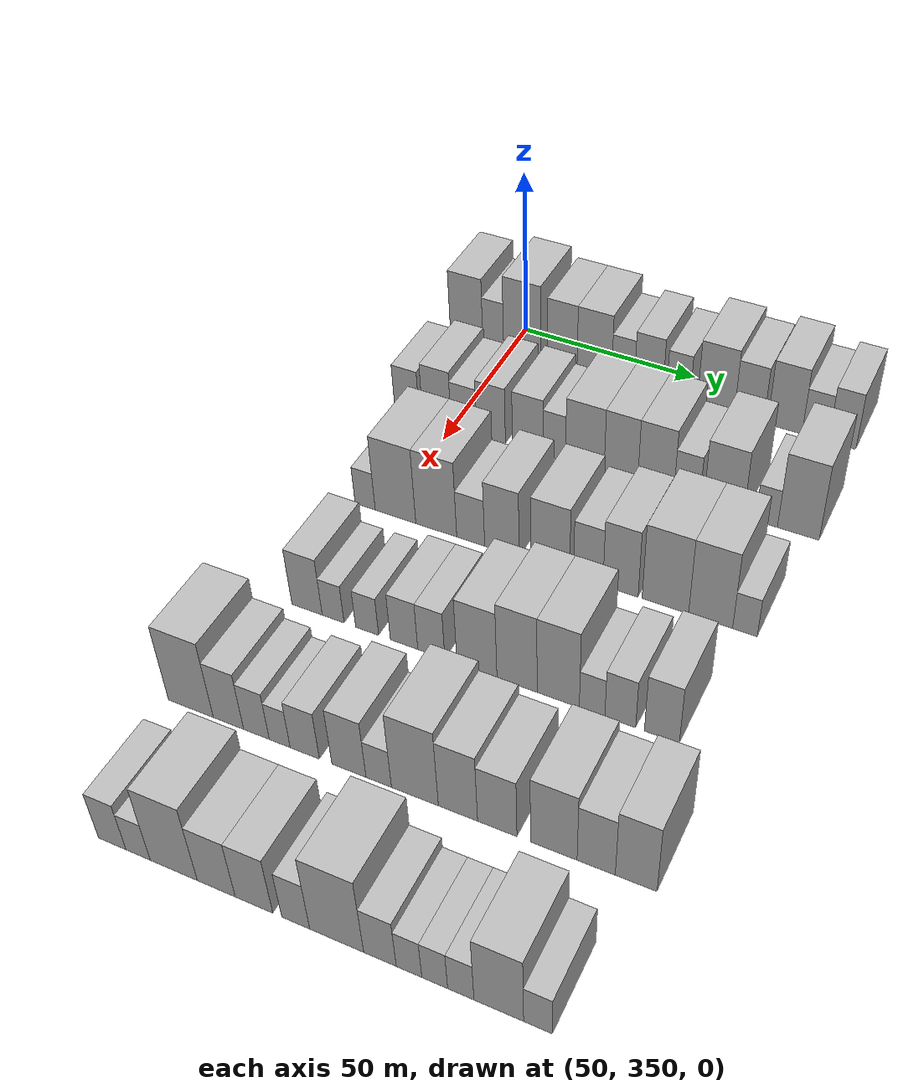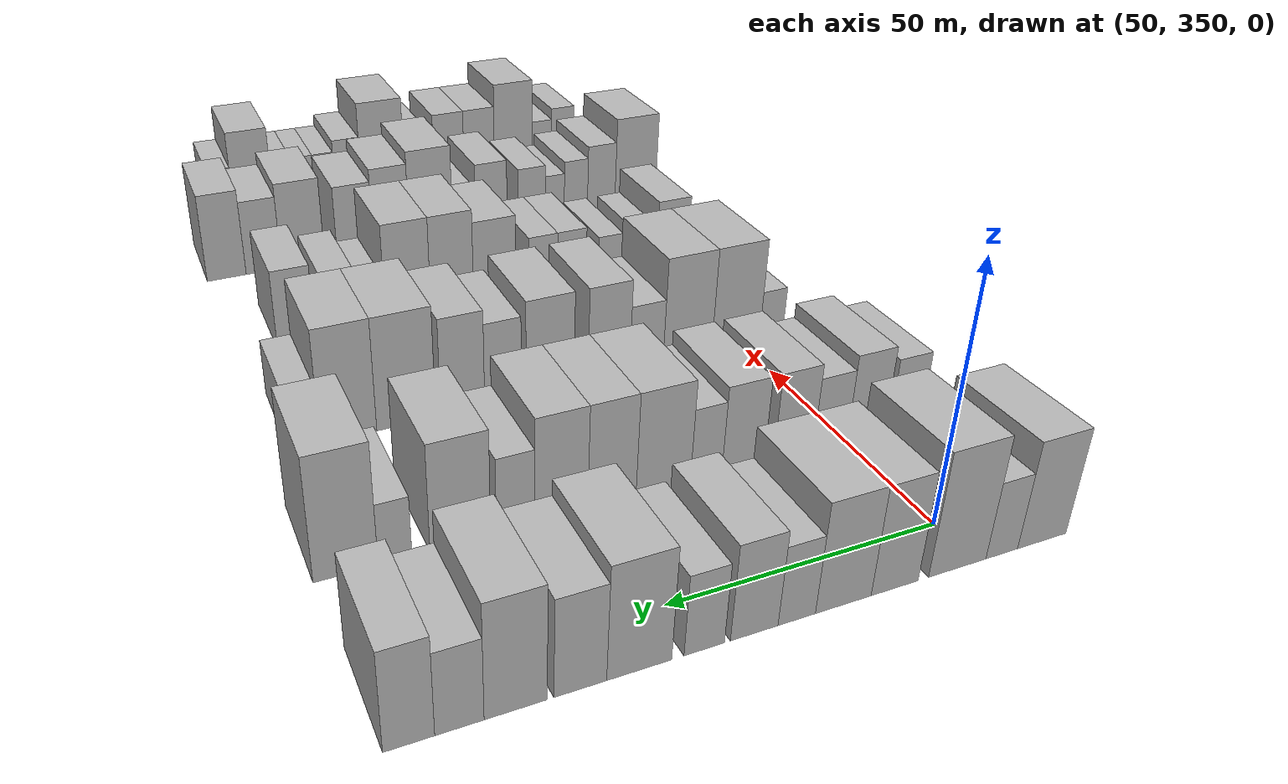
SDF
<sdf version="1.6">
 <world name="default">
  <model name="building_103">
   <static>1</static>
   <pose>50.0000 336.5577 0 0.000000 0.000000 0.000000</pose>
   <link name="link">
    <pose>0 0 10.50 0 0 0</pose>
    <collision name="collision"><geometry><box><size>20.0000 9.9642 21.0000</size></box></geometry></collision>
    <visual name="visual">
     <cast_shadows>0</cast_shadows>
     <geometry><box><size>20.0000 9.9642 21.0000</size></box></geometry>
     <material>
      <script>
       <uri>model://HANNAS_wall/materials/scripts</uri>
       <uri>model://HANNAS_wall/materials/textures</uri>
       <name>vrc/HANNAS_wall</name>
      </script>
     </material>
    </visual>
   </link>
  </model>
  <model name="building_104">
   <static>1</static>
   <pose>50.0000 344.7074 0 0.000000 0.000000 0.000000</pose>
   <link name="link">
    <pose>0 0 7.50 0 0 0</pose>
    <collision name="collision"><geometry><box><size>20.0000 6.3351 15.0000</size></box></geometry></collision>
    <visual name="visual">
     <cast_shadows>0</cast_shadows>
     <geometry><box><size>20.0000 6.3351 15.0000</size></box></geometry>
     <material>
      <script>
       <uri>model://HANNAS_wall/materials/scripts</uri>
       <uri>model://HANNAS_wall/materials/textures</uri>
       <name>vrc/HANNAS_wall</name>
      </script>
     </material>
    </visual>
   </link>
  </model>
  <model name="building_105">
   <static>1</static>
   <pose>50.0000 353.4525 0 0.000000 0.000000 0.000000</pose>
   <link name="link">
    <pose>0 0 12.00 0 0 0</pose>
    <collision name="collision"><geometry><box><size>20.0000 11.1551 24.0000</size></box></geometry></collision>
    <visual name="visual">
     <cast_shadows>0</cast_shadows>
     <geometry><box><size>20.0000 11.1551 24.0000</size></box></geometry>
     <material>
      <script>
       <uri>model://HANNAS_wall/materials/scripts</uri>
       <uri>model://HANNAS_wall/materials/textures</uri>
       <name>vrc/HANNAS_wall</name>
      </script>
     </material>
    </visual>
   </link>
  </model>
  <model name="building_106">
   <static>1</static>
   <pose>50.0000 365.4084 0 0.000000 0.000000 0.000000</pose>
   <link name="link">
    <pose>0 0 10.50 0 0 0</pose>
    <collision name="collision"><geometry><box><size>20.0000 8.7568 21.0000</size></box></geometry></collision>
    <visual name="visual">
     <cast_shadows>0</cast_shadows>
     <geometry><box><size>20.0000 8.7568 21.0000</size></box></geometry>
     <material>
      <script>
       <uri>model://HANNAS_wall/materials/scripts</uri>
       <uri>model://HANNAS_wall/materials/textures</uri>
       <name>vrc/HANNAS_wall</name>
      </script>
     </material>
    </visual>
   </link>
  </model>
  <model name="building_107">
   <static>1</static>
   <pose>50.0000 374.8156 0 0.000000 0.000000 0.000000</pose>
   <link name="link">
    <pose>0 0 10.50 0 0 0</pose>
    <collision name="collision"><geometry><box><size>20.0000 10.0576 21.0000</size></box></geometry></collision>
    <visual name="visual">
     <cast_shadows>0</cast_shadows>
     <geometry><box><size>20.0000 10.0576 21.0000</size></box></geometry>
     <material>
      <script>
       <uri>model://HANNAS_wall/materials/scripts</uri>
       <uri>model://HANNAS_wall/materials/textures</uri>
       <name>vrc/HANNAS_wall</name>
      </script>
     </material>
    </visual>
   </link>
  </model>
  <model name="building_108">
   <static>1</static>
   <pose>50.0000 383.1178 0 0.000000 0.000000 0.000000</pose>
   <link name="link">
    <pose>0 0 7.50 0 0 0</pose>
    <collision name="collision"><geometry><box><size>20.0000 6.5469 15.0000</size></box></geometry></collision>
    <visual name="visual">
     <cast_shadows>0</cast_shadows>
     <geometry><box><size>20.0000 6.5469 15.0000</size></box></geometry>
     <material>
      <script>
       <uri>model://HANNAS_wall/materials/scripts</uri>
       <uri>model://HANNAS_wall/materials/textures</uri>
       <name>vrc/HANNAS_wall</name>
      </script>
     </material>
    </visual>
   </link>
  </model>
  <model name="building_109">
   <static>1</static>
   <pose>50.0000 390.4465 0 0.000000 0.000000 0.000000</pose>
   <link name="link">
    <pose>0 0 9.00 0 0 0</pose>
    <collision name="collision"><geometry><box><size>20.0000 8.1104 18.0000</size></box></geometry></collision>
    <visual name="visual">
     <cast_shadows>0</cast_shadows>
     <geometry><box><size>20.0000 8.1104 18.0000</size></box></geometry>
     <material>
      <script>
       <uri>model://HANNAS_wall/materials/scripts</uri>
       <uri>model://HANNAS_wall/materials/textures</uri>
       <name>vrc/HANNAS_wall</name>
      </script>
     </material>
    </visual>
   </link>
  </model>
  <model name="building_110">
   <static>1</static>
   <pose>50.0000 398.8363 0 0.000000 0.000000 0.000000</pose>
   <link name="link">
    <pose>0 0 7.50 0 0 0</pose>
    <collision name="collision"><geometry><box><size>20.0000 6.6693 15.0000</size></box></geometry></collision>
    <visual name="visual">
     <cast_shadows>0</cast_shadows>
     <geometry><box><size>20.0000 6.6693 15.0000</size></box></geometry>
     <material>
      <script>
       <uri>model://HANNAS_wall/materials/scripts</uri>
       <uri>model://HANNAS_wall/materials/textures</uri>
       <name>vrc/HANNAS_wall</name>
      </script>
     </material>
    </visual>
   </link>
  </model>
  <model name="building_111">
   <static>1</static>
   <pose>50.0000 409.3232 0 0.000000 0.000000 0.000000</pose>
   <link name="link">
    <pose>0 0 10.50 0 0 0</pose>
    <collision name="collision"><geometry><box><size>20.0000 10.3045 21.0000</size></box></geometry></collision>
    <visual name="visual">
     <cast_shadows>0</cast_shadows>
     <geometry><box><size>20.0000 10.3045 21.0000</size></box></geometry>
     <material>
      <script>
       <uri>model://HANNAS_wall/materials/scripts</uri>
       <uri>model://HANNAS_wall/materials/textures</uri>
       <name>vrc/HANNAS_wall</name>
      </script>
     </material>
    </visual>
   </link>
  </model>
  <model name="building_112">
   <static>1</static>
   <pose>50.0000 418.5209 0 0.000000 0.000000 0.000000</pose>
   <link name="link">
    <pose>0 0 9.00 0 0 0</pose>
    <collision name="collision"><geometry><box><size>20.0000 8.0910 18.0000</size></box></geometry></collision>
    <visual name="visual">
     <cast_shadows>0</cast_shadows>
     <geometry><box><size>20.0000 8.0910 18.0000</size></box></geometry>
     <material>
      <script>
       <uri>model://HANNAS_wall/materials/scripts</uri>
       <uri>model://HANNAS_wall/materials/textures</uri>
       <name>vrc/HANNAS_wall</name>
      </script>
     </material>
    </visual>
   </link>
  </model>
  <model name="building_113">
   <static>1</static>
   <pose>50.0000 428.2059 0 0.000000 0.000000 0.000000</pose>
   <link name="link">
    <pose>0 0 10.50 0 0 0</pose>
    <collision name="collision"><geometry><box><size>20.0000 9.2790 21.0000</size></box></geometry></collision>
    <visual name="visual">
     <cast_shadows>0</cast_shadows>
     <geometry><box><size>20.0000 9.2790 21.0000</size></box></geometry>
     <material>
      <script>
       <uri>model://HANNAS_wall/materials/scripts</uri>
       <uri>model://HANNAS_wall/materials/textures</uri>
       <name>vrc/HANNAS_wall</name>
      </script>
     </material>
    </visual>
   </link>
  </model>
  <model name="building_114">
   <static>1</static>
   <pose>50.0000 436.3634 0 0.000000 0.000000 0.000000</pose>
   <link name="link">
    <pose>0 0 7.50 0 0 0</pose>
    <collision name="collision"><geometry><box><size>20.0000 7.0360 15.0000</size></box></geometry></collision>
    <visual name="visual">
     <cast_shadows>0</cast_shadows>
     <geometry><box><size>20.0000 7.0360 15.0000</size></box></geometry>
     <material>
      <script>
       <uri>model://HANNAS_wall/materials/scripts</uri>
       <uri>model://HANNAS_wall/materials/textures</uri>
       <name>vrc/HANNAS_wall</name>
      </script>
     </material>
    </visual>
   </link>
  </model>
  <model name="building_115">
   <static>1</static>
   <pose>50.0000 443.4965 0 0.000000 0.000000 0.000000</pose>
   <link name="link">
    <pose>0 0 9.00 0 0 0</pose>
    <collision name="collision"><geometry><box><size>20.0000 7.2303 18.0000</size></box></geometry></collision>
    <visual name="visual">
     <cast_shadows>0</cast_shadows>
     <geometry><box><size>20.0000 7.2303 18.0000</size></box></geometry>
     <material>
      <script>
       <uri>model://HANNAS_wall/materials/scripts</uri>
       <uri>model://HANNAS_wall/materials/textures</uri>
       <name>vrc/HANNAS_wall</name>
      </script>
     </material>
    </visual>
   </link>
  </model>
  <model name="building_226">
   <static>1</static>
   <pose>85.0000 336.7010 0 0.000000 0.000000 0.000000</pose>
   <link name="link">
    <pose>0 0 7.50 0 0 0</pose>
    <collision name="collision"><geometry><box><size>20.0000 7.2016 15.0000</size></box></geometry></collision>
    <visual name="visual">
     <cast_shadows>0</cast_shadows>
     <geometry><box><size>20.0000 7.2016 15.0000</size></box></geometry>
     <material>
      <script>
       <uri>model://HANNAS_wall/materials/scripts</uri>
       <uri>model://HANNAS_wall/materials/textures</uri>
       <name>vrc/HANNAS_wall</name>
      </script>
     </material>
    </visual>
   </link>
  </model>
  <model name="building_227">
   <static>1</static>
   <pose>85.0000 345.4311 0 0.000000 0.000000 0.000000</pose>
   <link name="link">
    <pose>0 0 9.00 0 0 0</pose>
    <collision name="collision"><geometry><box><size>20.0000 8.2585 18.0000</size></box></geometry></collision>
    <visual name="visual">
     <cast_shadows>0</cast_shadows>
     <geometry><box><size>20.0000 8.2585 18.0000</size></box></geometry>
     <material>
      <script>
       <uri>model://HANNAS_wall/materials/scripts</uri>
       <uri>model://HANNAS_wall/materials/textures</uri>
       <name>vrc/HANNAS_wall</name>
      </script>
     </material>
    </visual>
   </link>
  </model>
  <model name="building_228">
   <static>1</static>
   <pose>85.0000 353.2008 0 0.000000 0.000000 0.000000</pose>
   <link name="link">
    <pose>0 0 7.50 0 0 0</pose>
    <collision name="collision"><geometry><box><size>20.0000 7.2810 15.0000</size></box></geometry></collision>
    <visual name="visual">
     <cast_shadows>0</cast_shadows>
     <geometry><box><size>20.0000 7.2810 15.0000</size></box></geometry>
     <material>
      <script>
       <uri>model://HANNAS_wall/materials/scripts</uri>
       <uri>model://HANNAS_wall/materials/textures</uri>
       <name>vrc/HANNAS_wall</name>
      </script>
     </material>
    </visual>
   </link>
  </model>
  <model name="building_229">
   <static>1</static>
   <pose>85.0000 360.9821 0 0.000000 0.000000 0.000000</pose>
   <link name="link">
    <pose>0 0 9.00 0 0 0</pose>
    <collision name="collision"><geometry><box><size>20.0000 8.2816 18.0000</size></box></geometry></collision>
    <visual name="visual">
     <cast_shadows>0</cast_shadows>
     <geometry><box><size>20.0000 8.2816 18.0000</size></box></geometry>
     <material>
      <script>
       <uri>model://HANNAS_wall/materials/scripts</uri>
       <uri>model://HANNAS_wall/materials/textures</uri>
       <name>vrc/HANNAS_wall</name>
      </script>
     </material>
    </visual>
   </link>
  </model>
  <model name="building_230">
   <static>1</static>
   <pose>85.0000 371.3952 0 0.000000 0.000000 0.000000</pose>
   <link name="link">
    <pose>0 0 9.00 0 0 0</pose>
    <collision name="collision"><geometry><box><size>20.0000 8.5446 18.0000</size></box></geometry></collision>
    <visual name="visual">
     <cast_shadows>0</cast_shadows>
     <geometry><box><size>20.0000 8.5446 18.0000</size></box></geometry>
     <material>
      <script>
       <uri>model://HANNAS_wall/materials/scripts</uri>
       <uri>model://HANNAS_wall/materials/textures</uri>
       <name>vrc/HANNAS_wall</name>
      </script>
     </material>
    </visual>
   </link>
  </model>
  <model name="building_231">
   <static>1</static>
   <pose>85.0000 378.7827 0 0.000000 0.000000 0.000000</pose>
   <link name="link">
    <pose>0 0 7.50 0 0 0</pose>
    <collision name="collision"><geometry><box><size>20.0000 6.2304 15.0000</size></box></geometry></collision>
    <visual name="visual">
     <cast_shadows>0</cast_shadows>
     <geometry><box><size>20.0000 6.2304 15.0000</size></box></geometry>
     <material>
      <script>
       <uri>model://HANNAS_wall/materials/scripts</uri>
       <uri>model://HANNAS_wall/materials/textures</uri>
       <name>vrc/HANNAS_wall</name>
      </script>
     </material>
    </visual>
   </link>
  </model>
  <model name="building_232">
   <static>1</static>
   <pose>85.0000 387.1448 0 0.000000 0.000000 0.000000</pose>
   <link name="link">
    <pose>0 0 10.50 0 0 0</pose>
    <collision name="collision"><geometry><box><size>20.0000 10.4939 21.0000</size></box></geometry></collision>
    <visual name="visual">
     <cast_shadows>0</cast_shadows>
     <geometry><box><size>20.0000 10.4939 21.0000</size></box></geometry>
     <material>
      <script>
       <uri>model://HANNAS_wall/materials/scripts</uri>
       <uri>model://HANNAS_wall/materials/textures</uri>
       <name>vrc/HANNAS_wall</name>
      </script>
     </material>
    </visual>
   </link>
  </model>
  <model name="building_233">
   <static>1</static>
   <pose>85.0000 396.9102 0 0.000000 0.000000 0.000000</pose>
   <link name="link">
    <pose>0 0 10.50 0 0 0</pose>
    <collision name="collision"><geometry><box><size>20.0000 9.0370 21.0000</size></box></geometry></collision>
    <visual name="visual">
     <cast_shadows>0</cast_shadows>
     <geometry><box><size>20.0000 9.0370 21.0000</size></box></geometry>
     <material>
      <script>
       <uri>model://HANNAS_wall/materials/scripts</uri>
       <uri>model://HANNAS_wall/materials/textures</uri>
       <name>vrc/HANNAS_wall</name>
      </script>
     </material>
    </visual>
   </link>
  </model>
  <model name="building_234">
   <static>1</static>
   <pose>85.0000 406.2211 0 0.000000 0.000000 0.000000</pose>
   <link name="link">
    <pose>0 0 10.50 0 0 0</pose>
    <collision name="collision"><geometry><box><size>20.0000 9.5847 21.0000</size></box></geometry></collision>
    <visual name="visual">
     <cast_shadows>0</cast_shadows>
     <geometry><box><size>20.0000 9.5847 21.0000</size></box></geometry>
     <material>
      <script>
       <uri>model://HANNAS_wall/materials/scripts</uri>
       <uri>model://HANNAS_wall/materials/textures</uri>
       <name>vrc/HANNAS_wall</name>
      </script>
     </material>
    </visual>
   </link>
  </model>
  <model name="building_235">
   <static>1</static>
   <pose>85.0000 414.4042 0 0.000000 0.000000 0.000000</pose>
   <link name="link">
    <pose>0 0 7.50 0 0 0</pose>
    <collision name="collision"><geometry><box><size>20.0000 6.7814 15.0000</size></box></geometry></collision>
    <visual name="visual">
     <cast_shadows>0</cast_shadows>
     <geometry><box><size>20.0000 6.7814 15.0000</size></box></geometry>
     <material>
      <script>
       <uri>model://HANNAS_wall/materials/scripts</uri>
       <uri>model://HANNAS_wall/materials/textures</uri>
       <name>vrc/HANNAS_wall</name>
      </script>
     </material>
    </visual>
   </link>
  </model>
  <model name="building_236">
   <static>1</static>
   <pose>85.0000 423.9820 0 0.000000 0.000000 0.000000</pose>
   <link name="link">
    <pose>0 0 10.50 0 0 0</pose>
    <collision name="collision"><geometry><box><size>20.0000 10.3743 21.0000</size></box></geometry></collision>
    <visual name="visual">
     <cast_shadows>0</cast_shadows>
     <geometry><box><size>20.0000 10.3743 21.0000</size></box></geometry>
     <material>
      <script>
       <uri>model://HANNAS_wall/materials/scripts</uri>
       <uri>model://HANNAS_wall/materials/textures</uri>
       <name>vrc/HANNAS_wall</name>
      </script>
     </material>
    </visual>
   </link>
  </model>
  <model name="building_237">
   <static>1</static>
   <pose>85.0000 434.9537 0 0.000000 0.000000 0.000000</pose>
   <link name="link">
    <pose>0 0 6.00 0 0 0</pose>
    <collision name="collision"><geometry><box><size>20.0000 5.5690 12.0000</size></box></geometry></collision>
    <visual name="visual">
     <cast_shadows>0</cast_shadows>
     <geometry><box><size>20.0000 5.5690 12.0000</size></box></geometry>
     <material>
      <script>
       <uri>model://HANNAS_wall/materials/scripts</uri>
       <uri>model://HANNAS_wall/materials/textures</uri>
       <name>vrc/HANNAS_wall</name>
      </script>
     </material>
    </visual>
   </link>
  </model>
  <model name="building_238">
   <static>1</static>
   <pose>85.0000 442.9683 0 0.000000 0.000000 0.000000</pose>
   <link name="link">
    <pose>0 0 12.00 0 0 0</pose>
    <collision name="collision"><geometry><box><size>20.0000 10.4602 24.0000</size></box></geometry></collision>
    <visual name="visual">
     <cast_shadows>0</cast_shadows>
     <geometry><box><size>20.0000 10.4602 24.0000</size></box></geometry>
     <material>
      <script>
       <uri>model://HANNAS_wall/materials/scripts</uri>
       <uri>model://HANNAS_wall/materials/textures</uri>
       <name>vrc/HANNAS_wall</name>
      </script>
     </material>
    </visual>
   </link>
  </model>
  <model name="building_337">
   <static>1</static>
   <pose>120.0000 343.8261 0 0.000000 0.000000 0.000000</pose>
   <link name="link">
    <pose>0 0 6.00 0 0 0</pose>
    <collision name="collision"><geometry><box><size>20.0000 5.6065 12.0000</size></box></geometry></collision>
    <visual name="visual">
     <cast_shadows>0</cast_shadows>
     <geometry><box><size>20.0000 5.6065 12.0000</size></box></geometry>
     <material>
      <script>
       <uri>model://HANNAS_wall/materials/scripts</uri>
       <uri>model://HANNAS_wall/materials/textures</uri>
       <name>vrc/HANNAS_wall</name>
      </script>
     </material>
    </visual>
   </link>
  </model>
  <model name="building_338">
   <static>1</static>
   <pose>120.0000 352.2219 0 0.000000 0.000000 0.000000</pose>
   <link name="link">
    <pose>0 0 12.00 0 0 0</pose>
    <collision name="collision"><geometry><box><size>20.0000 11.1851 24.0000</size></box></geometry></collision>
    <visual name="visual">
     <cast_shadows>0</cast_shadows>
     <geometry><box><size>20.0000 11.1851 24.0000</size></box></geometry>
     <material>
      <script>
       <uri>model://HANNAS_wall/materials/scripts</uri>
       <uri>model://HANNAS_wall/materials/textures</uri>
       <name>vrc/HANNAS_wall</name>
      </script>
     </material>
    </visual>
   </link>
  </model>
  <model name="building_339">
   <static>1</static>
   <pose>120.0000 363.3524 0 0.000000 0.000000 0.000000</pose>
   <link name="link">
    <pose>0 0 12.00 0 0 0</pose>
    <collision name="collision"><geometry><box><size>20.0000 11.0761 24.0000</size></box></geometry></collision>
    <visual name="visual">
     <cast_shadows>0</cast_shadows>
     <geometry><box><size>20.0000 11.0761 24.0000</size></box></geometry>
     <material>
      <script>
       <uri>model://HANNAS_wall/materials/scripts</uri>
       <uri>model://HANNAS_wall/materials/textures</uri>
       <name>vrc/HANNAS_wall</name>
      </script>
     </material>
    </visual>
   </link>
  </model>
  <model name="building_340">
   <static>1</static>
   <pose>120.0000 372.6185 0 0.000000 0.000000 0.000000</pose>
   <link name="link">
    <pose>0 0 7.50 0 0 0</pose>
    <collision name="collision"><geometry><box><size>20.0000 7.4561 15.0000</size></box></geometry></collision>
    <visual name="visual">
     <cast_shadows>0</cast_shadows>
     <geometry><box><size>20.0000 7.4561 15.0000</size></box></geometry>
     <material>
      <script>
       <uri>model://HANNAS_wall/materials/scripts</uri>
       <uri>model://HANNAS_wall/materials/textures</uri>
       <name>vrc/HANNAS_wall</name>
      </script>
     </material>
    </visual>
   </link>
  </model>
  <model name="building_341">
   <static>1</static>
   <pose>120.0000 380.8803 0 0.000000 0.000000 0.000000</pose>
   <link name="link">
    <pose>0 0 10.50 0 0 0</pose>
    <collision name="collision"><geometry><box><size>20.0000 9.0677 21.0000</size></box></geometry></collision>
    <visual name="visual">
     <cast_shadows>0</cast_shadows>
     <geometry><box><size>20.0000 9.0677 21.0000</size></box></geometry>
     <material>
      <script>
       <uri>model://HANNAS_wall/materials/scripts</uri>
       <uri>model://HANNAS_wall/materials/textures</uri>
       <name>vrc/HANNAS_wall</name>
      </script>
     </material>
    </visual>
   </link>
  </model>
  <model name="building_342">
   <static>1</static>
   <pose>120.0000 393.4251 0 0.000000 0.000000 0.000000</pose>
   <link name="link">
    <pose>0 0 10.50 0 0 0</pose>
    <collision name="collision"><geometry><box><size>20.0000 10.0218 21.0000</size></box></geometry></collision>
    <visual name="visual">
     <cast_shadows>0</cast_shadows>
     <geometry><box><size>20.0000 10.0218 21.0000</size></box></geometry>
     <material>
      <script>
       <uri>model://HANNAS_wall/materials/scripts</uri>
       <uri>model://HANNAS_wall/materials/textures</uri>
       <name>vrc/HANNAS_wall</name>
      </script>
     </material>
    </visual>
   </link>
  </model>
  <model name="building_343">
   <static>1</static>
   <pose>120.0000 403.1614 0 0.000000 0.000000 0.000000</pose>
   <link name="link">
    <pose>0 0 9.00 0 0 0</pose>
    <collision name="collision"><geometry><box><size>20.0000 7.4509 18.0000</size></box></geometry></collision>
    <visual name="visual">
     <cast_shadows>0</cast_shadows>
     <geometry><box><size>20.0000 7.4509 18.0000</size></box></geometry>
     <material>
      <script>
       <uri>model://HANNAS_wall/materials/scripts</uri>
       <uri>model://HANNAS_wall/materials/textures</uri>
       <name>vrc/HANNAS_wall</name>
      </script>
     </material>
    </visual>
   </link>
  </model>
  <model name="building_344">
   <static>1</static>
   <pose>120.0000 411.2711 0 0.000000 0.000000 0.000000</pose>
   <link name="link">
    <pose>0 0 10.50 0 0 0</pose>
    <collision name="collision"><geometry><box><size>20.0000 8.7684 21.0000</size></box></geometry></collision>
    <visual name="visual">
     <cast_shadows>0</cast_shadows>
     <geometry><box><size>20.0000 8.7684 21.0000</size></box></geometry>
     <material>
      <script>
       <uri>model://HANNAS_wall/materials/scripts</uri>
       <uri>model://HANNAS_wall/materials/textures</uri>
       <name>vrc/HANNAS_wall</name>
      </script>
     </material>
    </visual>
   </link>
  </model>
  <model name="building_345">
   <static>1</static>
   <pose>120.0000 422.3543 0 0.000000 0.000000 0.000000</pose>
   <link name="link">
    <pose>0 0 12.00 0 0 0</pose>
    <collision name="collision"><geometry><box><size>20.0000 11.3979 24.0000</size></box></geometry></collision>
    <visual name="visual">
     <cast_shadows>0</cast_shadows>
     <geometry><box><size>20.0000 11.3979 24.0000</size></box></geometry>
     <material>
      <script>
       <uri>model://HANNAS_wall/materials/scripts</uri>
       <uri>model://HANNAS_wall/materials/textures</uri>
       <name>vrc/HANNAS_wall</name>
      </script>
     </material>
    </visual>
   </link>
  </model>
  <model name="building_346">
   <static>1</static>
   <pose>120.0000 433.3521 0 0.000000 0.000000 0.000000</pose>
   <link name="link">
    <pose>0 0 12.00 0 0 0</pose>
    <collision name="collision"><geometry><box><size>20.0000 10.5977 24.0000</size></box></geometry></collision>
    <visual name="visual">
     <cast_shadows>0</cast_shadows>
     <geometry><box><size>20.0000 10.5977 24.0000</size></box></geometry>
     <material>
      <script>
       <uri>model://HANNAS_wall/materials/scripts</uri>
       <uri>model://HANNAS_wall/materials/textures</uri>
       <name>vrc/HANNAS_wall</name>
      </script>
     </material>
    </visual>
   </link>
  </model>
  <model name="building_347">
   <static>1</static>
   <pose>120.0000 441.5757 0 0.000000 0.000000 0.000000</pose>
   <link name="link">
    <pose>0 0 6.00 0 0 0</pose>
    <collision name="collision"><geometry><box><size>20.0000 5.8495 12.0000</size></box></geometry></collision>
    <visual name="visual">
     <cast_shadows>0</cast_shadows>
     <geometry><box><size>20.0000 5.8495 12.0000</size></box></geometry>
     <material>
      <script>
       <uri>model://HANNAS_wall/materials/scripts</uri>
       <uri>model://HANNAS_wall/materials/textures</uri>
       <name>vrc/HANNAS_wall</name>
      </script>
     </material>
    </visual>
   </link>
  </model>
  <model name="building_464">
   <static>1</static>
   <pose>155.0000 348.2800 0 0.000000 0.000000 0.000000</pose>
   <link name="link">
    <pose>0 0 9.00 0 0 0</pose>
    <collision name="collision"><geometry><box><size>20.0000 8.0233 18.0000</size></box></geometry></collision>
    <visual name="visual">
     <cast_shadows>0</cast_shadows>
     <geometry><box><size>20.0000 8.0233 18.0000</size></box></geometry>
     <material>
      <script>
       <uri>model://HANNAS_wall/materials/scripts</uri>
       <uri>model://HANNAS_wall/materials/textures</uri>
       <name>vrc/HANNAS_wall</name>
      </script>
     </material>
    </visual>
   </link>
  </model>
  <model name="building_465">
   <static>1</static>
   <pose>155.0000 355.1424 0 0.000000 0.000000 0.000000</pose>
   <link name="link">
    <pose>0 0 6.00 0 0 0</pose>
    <collision name="collision"><geometry><box><size>20.0000 5.7015 12.0000</size></box></geometry></collision>
    <visual name="visual">
     <cast_shadows>0</cast_shadows>
     <geometry><box><size>20.0000 5.7015 12.0000</size></box></geometry>
     <material>
      <script>
       <uri>model://HANNAS_wall/materials/scripts</uri>
       <uri>model://HANNAS_wall/materials/textures</uri>
       <name>vrc/HANNAS_wall</name>
      </script>
     </material>
    </visual>
   </link>
  </model>
  <model name="building_466">
   <static>1</static>
   <pose>155.0000 363.9572 0 0.000000 0.000000 0.000000</pose>
   <link name="link">
    <pose>0 0 6.00 0 0 0</pose>
    <collision name="collision"><geometry><box><size>20.0000 5.9280 12.0000</size></box></geometry></collision>
    <visual name="visual">
     <cast_shadows>0</cast_shadows>
     <geometry><box><size>20.0000 5.9280 12.0000</size></box></geometry>
     <material>
      <script>
       <uri>model://HANNAS_wall/materials/scripts</uri>
       <uri>model://HANNAS_wall/materials/textures</uri>
       <name>vrc/HANNAS_wall</name>
      </script>
     </material>
    </visual>
   </link>
  </model>
  <model name="building_467">
   <static>1</static>
   <pose>155.0000 373.3849 0 0.000000 0.000000 0.000000</pose>
   <link name="link">
    <pose>0 0 7.50 0 0 0</pose>
    <collision name="collision"><geometry><box><size>20.0000 6.9273 15.0000</size></box></geometry></collision>
    <visual name="visual">
     <cast_shadows>0</cast_shadows>
     <geometry><box><size>20.0000 6.9273 15.0000</size></box></geometry>
     <material>
      <script>
       <uri>model://HANNAS_wall/materials/scripts</uri>
       <uri>model://HANNAS_wall/materials/textures</uri>
       <name>vrc/HANNAS_wall</name>
      </script>
     </material>
    </visual>
   </link>
  </model>
  <model name="building_468">
   <static>1</static>
   <pose>155.0000 380.2444 0 0.000000 0.000000 0.000000</pose>
   <link name="link">
    <pose>0 0 7.50 0 0 0</pose>
    <collision name="collision"><geometry><box><size>20.0000 6.7916 15.0000</size></box></geometry></collision>
    <visual name="visual">
     <cast_shadows>0</cast_shadows>
     <geometry><box><size>20.0000 6.7916 15.0000</size></box></geometry>
     <material>
      <script>
       <uri>model://HANNAS_wall/materials/scripts</uri>
       <uri>model://HANNAS_wall/materials/textures</uri>
       <name>vrc/HANNAS_wall</name>
      </script>
     </material>
    </visual>
   </link>
  </model>
  <model name="building_469">
   <static>1</static>
   <pose>155.0000 391.5427 0 0.000000 0.000000 0.000000</pose>
   <link name="link">
    <pose>0 0 10.50 0 0 0</pose>
    <collision name="collision"><geometry><box><size>20.0000 9.8050 21.0000</size></box></geometry></collision>
    <visual name="visual">
     <cast_shadows>0</cast_shadows>
     <geometry><box><size>20.0000 9.8050 21.0000</size></box></geometry>
     <material>
      <script>
       <uri>model://HANNAS_wall/materials/scripts</uri>
       <uri>model://HANNAS_wall/materials/textures</uri>
       <name>vrc/HANNAS_wall</name>
      </script>
     </material>
    </visual>
   </link>
  </model>
  <model name="building_470">
   <static>1</static>
   <pose>155.0000 401.2767 0 0.000000 0.000000 0.000000</pose>
   <link name="link">
    <pose>0 0 12.00 0 0 0</pose>
    <collision name="collision"><geometry><box><size>20.0000 9.6630 24.0000</size></box></geometry></collision>
    <visual name="visual">
     <cast_shadows>0</cast_shadows>
     <geometry><box><size>20.0000 9.6630 24.0000</size></box></geometry>
     <material>
      <script>
       <uri>model://HANNAS_wall/materials/scripts</uri>
       <uri>model://HANNAS_wall/materials/textures</uri>
       <name>vrc/HANNAS_wall</name>
      </script>
     </material>
    </visual>
   </link>
  </model>
  <model name="building_471">
   <static>1</static>
   <pose>155.0000 411.1092 0 0.000000 0.000000 0.000000</pose>
   <link name="link">
    <pose>0 0 12.00 0 0 0</pose>
    <collision name="collision"><geometry><box><size>20.0000 10.0019 24.0000</size></box></geometry></collision>
    <visual name="visual">
     <cast_shadows>0</cast_shadows>
     <geometry><box><size>20.0000 10.0019 24.0000</size></box></geometry>
     <material>
      <script>
       <uri>model://HANNAS_wall/materials/scripts</uri>
       <uri>model://HANNAS_wall/materials/textures</uri>
       <name>vrc/HANNAS_wall</name>
      </script>
     </material>
    </visual>
   </link>
  </model>
  <model name="building_472">
   <static>1</static>
   <pose>155.0000 419.0945 0 0.000000 0.000000 0.000000</pose>
   <link name="link">
    <pose>0 0 6.00 0 0 0</pose>
    <collision name="collision"><geometry><box><size>20.0000 5.9688 12.0000</size></box></geometry></collision>
    <visual name="visual">
     <cast_shadows>0</cast_shadows>
     <geometry><box><size>20.0000 5.9688 12.0000</size></box></geometry>
     <material>
      <script>
       <uri>model://HANNAS_wall/materials/scripts</uri>
       <uri>model://HANNAS_wall/materials/textures</uri>
       <name>vrc/HANNAS_wall</name>
      </script>
     </material>
    </visual>
   </link>
  </model>
  <model name="building_473">
   <static>1</static>
   <pose>155.0000 425.6318 0 0.000000 0.000000 0.000000</pose>
   <link name="link">
    <pose>0 0 7.50 0 0 0</pose>
    <collision name="collision"><geometry><box><size>20.0000 7.1059 15.0000</size></box></geometry></collision>
    <visual name="visual">
     <cast_shadows>0</cast_shadows>
     <geometry><box><size>20.0000 7.1059 15.0000</size></box></geometry>
     <material>
      <script>
       <uri>model://HANNAS_wall/materials/scripts</uri>
       <uri>model://HANNAS_wall/materials/textures</uri>
       <name>vrc/HANNAS_wall</name>
      </script>
     </material>
    </visual>
   </link>
  </model>
  <model name="building_474">
   <static>1</static>
   <pose>155.0000 435.1447 0 0.000000 0.000000 0.000000</pose>
   <link name="link">
    <pose>0 0 9.00 0 0 0</pose>
    <collision name="collision"><geometry><box><size>20.0000 7.9199 18.0000</size></box></geometry></collision>
    <visual name="visual">
     <cast_shadows>0</cast_shadows>
     <geometry><box><size>20.0000 7.9199 18.0000</size></box></geometry>
     <material>
      <script>
       <uri>model://HANNAS_wall/materials/scripts</uri>
       <uri>model://HANNAS_wall/materials/textures</uri>
       <name>vrc/HANNAS_wall</name>
      </script>
     </material>
    </visual>
   </link>
  </model>
  <model name="building_583">
   <static>1</static>
   <pose>190.0000 340.2089 0 0.000000 0.000000 0.000000</pose>
   <link name="link">
    <pose>0 0 12.00 0 0 0</pose>
    <collision name="collision"><geometry><box><size>20.0000 11.4460 24.0000</size></box></geometry></collision>
    <visual name="visual">
     <cast_shadows>0</cast_shadows>
     <geometry><box><size>20.0000 11.4460 24.0000</size></box></geometry>
     <material>
      <script>
       <uri>model://HANNAS_wall/materials/scripts</uri>
       <uri>model://HANNAS_wall/materials/textures</uri>
       <name>vrc/HANNAS_wall</name>
      </script>
     </material>
    </visual>
   </link>
  </model>
  <model name="building_584">
   <static>1</static>
   <pose>190.0000 349.7488 0 0.000000 0.000000 0.000000</pose>
   <link name="link">
    <pose>0 0 9.00 0 0 0</pose>
    <collision name="collision"><geometry><box><size>20.0000 7.6338 18.0000</size></box></geometry></collision>
    <visual name="visual">
     <cast_shadows>0</cast_shadows>
     <geometry><box><size>20.0000 7.6338 18.0000</size></box></geometry>
     <material>
      <script>
       <uri>model://HANNAS_wall/materials/scripts</uri>
       <uri>model://HANNAS_wall/materials/textures</uri>
       <name>vrc/HANNAS_wall</name>
      </script>
     </material>
    </visual>
   </link>
  </model>
  <model name="building_585">
   <static>1</static>
   <pose>190.0000 356.7473 0 0.000000 0.000000 0.000000</pose>
   <link name="link">
    <pose>0 0 7.50 0 0 0</pose>
    <collision name="collision"><geometry><box><size>20.0000 6.3632 15.0000</size></box></geometry></collision>
    <visual name="visual">
     <cast_shadows>0</cast_shadows>
     <geometry><box><size>20.0000 6.3632 15.0000</size></box></geometry>
     <material>
      <script>
       <uri>model://HANNAS_wall/materials/scripts</uri>
       <uri>model://HANNAS_wall/materials/textures</uri>
       <name>vrc/HANNAS_wall</name>
      </script>
     </material>
    </visual>
   </link>
  </model>
  <model name="building_586">
   <static>1</static>
   <pose>190.0000 362.4925 0 0.000000 0.000000 0.000000</pose>
   <link name="link">
    <pose>0 0 6.00 0 0 0</pose>
    <collision name="collision"><geometry><box><size>20.0000 5.1271 12.0000</size></box></geometry></collision>
    <visual name="visual">
     <cast_shadows>0</cast_shadows>
     <geometry><box><size>20.0000 5.1271 12.0000</size></box></geometry>
     <material>
      <script>
       <uri>model://HANNAS_wall/materials/scripts</uri>
       <uri>model://HANNAS_wall/materials/textures</uri>
       <name>vrc/HANNAS_wall</name>
      </script>
     </material>
    </visual>
   </link>
  </model>
  <model name="building_587">
   <static>1</static>
   <pose>190.0000 368.6094 0 0.000000 0.000000 0.000000</pose>
   <link name="link">
    <pose>0 0 7.50 0 0 0</pose>
    <collision name="collision"><geometry><box><size>20.0000 7.1066 15.0000</size></box></geometry></collision>
    <visual name="visual">
     <cast_shadows>0</cast_shadows>
     <geometry><box><size>20.0000 7.1066 15.0000</size></box></geometry>
     <material>
      <script>
       <uri>model://HANNAS_wall/materials/scripts</uri>
       <uri>model://HANNAS_wall/materials/textures</uri>
       <name>vrc/HANNAS_wall</name>
      </script>
     </material>
    </visual>
   </link>
  </model>
  <model name="building_588">
   <static>1</static>
   <pose>190.0000 379.2212 0 0.000000 0.000000 0.000000</pose>
   <link name="link">
    <pose>0 0 9.00 0 0 0</pose>
    <collision name="collision"><geometry><box><size>20.0000 8.1171 18.0000</size></box></geometry></collision>
    <visual name="visual">
     <cast_shadows>0</cast_shadows>
     <geometry><box><size>20.0000 8.1171 18.0000</size></box></geometry>
     <material>
      <script>
       <uri>model://HANNAS_wall/materials/scripts</uri>
       <uri>model://HANNAS_wall/materials/textures</uri>
       <name>vrc/HANNAS_wall</name>
      </script>
     </material>
    </visual>
   </link>
  </model>
  <model name="building_589">
   <static>1</static>
   <pose>190.0000 386.2650 0 0.000000 0.000000 0.000000</pose>
   <link name="link">
    <pose>0 0 6.00 0 0 0</pose>
    <collision name="collision"><geometry><box><size>20.0000 5.9704 12.0000</size></box></geometry></collision>
    <visual name="visual">
     <cast_shadows>0</cast_shadows>
     <geometry><box><size>20.0000 5.9704 12.0000</size></box></geometry>
     <material>
      <script>
       <uri>model://HANNAS_wall/materials/scripts</uri>
       <uri>model://HANNAS_wall/materials/textures</uri>
       <name>vrc/HANNAS_wall</name>
      </script>
     </material>
    </visual>
   </link>
  </model>
  <model name="building_590">
   <static>1</static>
   <pose>190.0000 394.6694 0 0.000000 0.000000 0.000000</pose>
   <link name="link">
    <pose>0 0 12.00 0 0 0</pose>
    <collision name="collision"><geometry><box><size>20.0000 10.8385 24.0000</size></box></geometry></collision>
    <visual name="visual">
     <cast_shadows>0</cast_shadows>
     <geometry><box><size>20.0000 10.8385 24.0000</size></box></geometry>
     <material>
      <script>
       <uri>model://HANNAS_wall/materials/scripts</uri>
       <uri>model://HANNAS_wall/materials/textures</uri>
       <name>vrc/HANNAS_wall</name>
      </script>
     </material>
    </visual>
   </link>
  </model>
  <model name="building_591">
   <static>1</static>
   <pose>190.0000 404.5330 0 0.000000 0.000000 0.000000</pose>
   <link name="link">
    <pose>0 0 10.50 0 0 0</pose>
    <collision name="collision"><geometry><box><size>20.0000 8.8887 21.0000</size></box></geometry></collision>
    <visual name="visual">
     <cast_shadows>0</cast_shadows>
     <geometry><box><size>20.0000 8.8887 21.0000</size></box></geometry>
     <material>
      <script>
       <uri>model://HANNAS_wall/materials/scripts</uri>
       <uri>model://HANNAS_wall/materials/textures</uri>
       <name>vrc/HANNAS_wall</name>
      </script>
     </material>
    </visual>
   </link>
  </model>
  <model name="building_592">
   <static>1</static>
   <pose>190.0000 413.3607 0 0.000000 0.000000 0.000000</pose>
   <link name="link">
    <pose>0 0 9.00 0 0 0</pose>
    <collision name="collision"><geometry><box><size>20.0000 8.7666 18.0000</size></box></geometry></collision>
    <visual name="visual">
     <cast_shadows>0</cast_shadows>
     <geometry><box><size>20.0000 8.7666 18.0000</size></box></geometry>
     <material>
      <script>
       <uri>model://HANNAS_wall/materials/scripts</uri>
       <uri>model://HANNAS_wall/materials/textures</uri>
       <name>vrc/HANNAS_wall</name>
      </script>
     </material>
    </visual>
   </link>
  </model>
  <model name="building_593">
   <static>1</static>
   <pose>190.0000 425.7982 0 0.000000 0.000000 0.000000</pose>
   <link name="link">
    <pose>0 0 10.50 0 0 0</pose>
    <collision name="collision"><geometry><box><size>20.0000 10.1085 21.0000</size></box></geometry></collision>
    <visual name="visual">
     <cast_shadows>0</cast_shadows>
     <geometry><box><size>20.0000 10.1085 21.0000</size></box></geometry>
     <material>
      <script>
       <uri>model://HANNAS_wall/materials/scripts</uri>
       <uri>model://HANNAS_wall/materials/textures</uri>
       <name>vrc/HANNAS_wall</name>
      </script>
     </material>
    </visual>
   </link>
  </model>
  <model name="building_594">
   <static>1</static>
   <pose>190.0000 434.9322 0 0.000000 0.000000 0.000000</pose>
   <link name="link">
    <pose>0 0 9.00 0 0 0</pose>
    <collision name="collision"><geometry><box><size>20.0000 8.1594 18.0000</size></box></geometry></collision>
    <visual name="visual">
     <cast_shadows>0</cast_shadows>
     <geometry><box><size>20.0000 8.1594 18.0000</size></box></geometry>
     <material>
      <script>
       <uri>model://HANNAS_wall/materials/scripts</uri>
       <uri>model://HANNAS_wall/materials/textures</uri>
       <name>vrc/HANNAS_wall</name>
      </script>
     </material>
    </visual>
   </link>
  </model>
  <model name="building_595">
   <static>1</static>
   <pose>190.0000 443.4002 0 0.000000 0.000000 0.000000</pose>
   <link name="link">
    <pose>0 0 10.50 0 0 0</pose>
    <collision name="collision"><geometry><box><size>20.0000 8.7766 21.0000</size></box></geometry></collision>
    <visual name="visual">
     <cast_shadows>0</cast_shadows>
     <geometry><box><size>20.0000 8.7766 21.0000</size></box></geometry>
     <material>
      <script>
       <uri>model://HANNAS_wall/materials/scripts</uri>
       <uri>model://HANNAS_wall/materials/textures</uri>
       <name>vrc/HANNAS_wall</name>
      </script>
     </material>
    </visual>
   </link>
  </model>
  <model name="building_713">
   <static>1</static>
   <pose>225.0000 345.1526 0 0.000000 0.000000 0.000000</pose>
   <link name="link">
    <pose>0 0 7.50 0 0 0</pose>
    <collision name="collision"><geometry><box><size>20.0000 6.6156 15.0000</size></box></geometry></collision>
    <visual name="visual">
     <cast_shadows>0</cast_shadows>
     <geometry><box><size>20.0000 6.6156 15.0000</size></box></geometry>
     <material>
      <script>
       <uri>model://HANNAS_wall/materials/scripts</uri>
       <uri>model://HANNAS_wall/materials/textures</uri>
       <name>vrc/HANNAS_wall</name>
      </script>
     </material>
    </visual>
   </link>
  </model>
  <model name="building_714">
   <static>1</static>
   <pose>225.0000 351.3590 0 0.000000 0.000000 0.000000</pose>
   <link name="link">
    <pose>0 0 6.00 0 0 0</pose>
    <collision name="collision"><geometry><box><size>20.0000 5.7972 12.0000</size></box></geometry></collision>
    <visual name="visual">
     <cast_shadows>0</cast_shadows>
     <geometry><box><size>20.0000 5.7972 12.0000</size></box></geometry>
     <material>
      <script>
       <uri>model://HANNAS_wall/materials/scripts</uri>
       <uri>model://HANNAS_wall/materials/textures</uri>
       <name>vrc/HANNAS_wall</name>
      </script>
     </material>
    </visual>
   </link>
  </model>
  <model name="building_715">
   <static>1</static>
   <pose>225.0000 359.7643 0 0.000000 0.000000 0.000000</pose>
   <link name="link">
    <pose>0 0 12.00 0 0 0</pose>
    <collision name="collision"><geometry><box><size>20.0000 11.0135 24.0000</size></box></geometry></collision>
    <visual name="visual">
     <cast_shadows>0</cast_shadows>
     <geometry><box><size>20.0000 11.0135 24.0000</size></box></geometry>
     <material>
      <script>
       <uri>model://HANNAS_wall/materials/scripts</uri>
       <uri>model://HANNAS_wall/materials/textures</uri>
       <name>vrc/HANNAS_wall</name>
      </script>
     </material>
    </visual>
   </link>
  </model>
  <model name="building_716">
   <static>1</static>
   <pose>225.0000 369.6236 0 0.000000 0.000000 0.000000</pose>
   <link name="link">
    <pose>0 0 9.00 0 0 0</pose>
    <collision name="collision"><geometry><box><size>20.0000 8.7051 18.0000</size></box></geometry></collision>
    <visual name="visual">
     <cast_shadows>0</cast_shadows>
     <geometry><box><size>20.0000 8.7051 18.0000</size></box></geometry>
     <material>
      <script>
       <uri>model://HANNAS_wall/materials/scripts</uri>
       <uri>model://HANNAS_wall/materials/textures</uri>
       <name>vrc/HANNAS_wall</name>
      </script>
     </material>
    </visual>
   </link>
  </model>
  <model name="building_717">
   <static>1</static>
   <pose>225.0000 378.2143 0 0.000000 0.000000 0.000000</pose>
   <link name="link">
    <pose>0 0 9.00 0 0 0</pose>
    <collision name="collision"><geometry><box><size>20.0000 8.4762 18.0000</size></box></geometry></collision>
    <visual name="visual">
     <cast_shadows>0</cast_shadows>
     <geometry><box><size>20.0000 8.4762 18.0000</size></box></geometry>
     <material>
      <script>
       <uri>model://HANNAS_wall/materials/scripts</uri>
       <uri>model://HANNAS_wall/materials/textures</uri>
       <name>vrc/HANNAS_wall</name>
      </script>
     </material>
    </visual>
   </link>
  </model>
  <model name="building_718">
   <static>1</static>
   <pose>225.0000 387.5495 0 0.000000 0.000000 0.000000</pose>
   <link name="link">
    <pose>0 0 7.50 0 0 0</pose>
    <collision name="collision"><geometry><box><size>20.0000 6.1943 15.0000</size></box></geometry></collision>
    <visual name="visual">
     <cast_shadows>0</cast_shadows>
     <geometry><box><size>20.0000 6.1943 15.0000</size></box></geometry>
     <material>
      <script>
       <uri>model://HANNAS_wall/materials/scripts</uri>
       <uri>model://HANNAS_wall/materials/textures</uri>
       <name>vrc/HANNAS_wall</name>
      </script>
     </material>
    </visual>
   </link>
  </model>
  <model name="building_719">
   <static>1</static>
   <pose>225.0000 396.5146 0 0.000000 0.000000 0.000000</pose>
   <link name="link">
    <pose>0 0 12.00 0 0 0</pose>
    <collision name="collision"><geometry><box><size>20.0000 11.7358 24.0000</size></box></geometry></collision>
    <visual name="visual">
     <cast_shadows>0</cast_shadows>
     <geometry><box><size>20.0000 11.7358 24.0000</size></box></geometry>
     <material>
      <script>
       <uri>model://HANNAS_wall/materials/scripts</uri>
       <uri>model://HANNAS_wall/materials/textures</uri>
       <name>vrc/HANNAS_wall</name>
      </script>
     </material>
    </visual>
   </link>
  </model>
  <model name="building_720">
   <static>1</static>
   <pose>225.0000 405.8527 0 0.000000 0.000000 0.000000</pose>
   <link name="link">
    <pose>0 0 7.50 0 0 0</pose>
    <collision name="collision"><geometry><box><size>20.0000 6.9403 15.0000</size></box></geometry></collision>
    <visual name="visual">
     <cast_shadows>0</cast_shadows>
     <geometry><box><size>20.0000 6.9403 15.0000</size></box></geometry>
     <material>
      <script>
       <uri>model://HANNAS_wall/materials/scripts</uri>
       <uri>model://HANNAS_wall/materials/textures</uri>
       <name>vrc/HANNAS_wall</name>
      </script>
     </material>
    </visual>
   </link>
  </model>
  <model name="building_721">
   <static>1</static>
   <pose>225.0000 412.0114 0 0.000000 0.000000 0.000000</pose>
   <link name="link">
    <pose>0 0 6.00 0 0 0</pose>
    <collision name="collision"><geometry><box><size>20.0000 5.3772 12.0000</size></box></geometry></collision>
    <visual name="visual">
     <cast_shadows>0</cast_shadows>
     <geometry><box><size>20.0000 5.3772 12.0000</size></box></geometry>
     <material>
      <script>
       <uri>model://HANNAS_wall/materials/scripts</uri>
       <uri>model://HANNAS_wall/materials/textures</uri>
       <name>vrc/HANNAS_wall</name>
      </script>
     </material>
    </visual>
   </link>
  </model>
  <model name="building_722">
   <static>1</static>
   <pose>225.0000 417.3871 0 0.000000 0.000000 0.000000</pose>
   <link name="link">
    <pose>0 0 6.00 0 0 0</pose>
    <collision name="collision"><geometry><box><size>20.0000 5.3741 12.0000</size></box></geometry></collision>
    <visual name="visual">
     <cast_shadows>0</cast_shadows>
     <geometry><box><size>20.0000 5.3741 12.0000</size></box></geometry>
     <material>
      <script>
       <uri>model://HANNAS_wall/materials/scripts</uri>
       <uri>model://HANNAS_wall/materials/textures</uri>
       <name>vrc/HANNAS_wall</name>
      </script>
     </material>
    </visual>
   </link>
  </model>
  <model name="building_723">
   <static>1</static>
   <pose>225.0000 422.7800 0 0.000000 0.000000 0.000000</pose>
   <link name="link">
    <pose>0 0 6.00 0 0 0</pose>
    <collision name="collision"><geometry><box><size>20.0000 5.4118 12.0000</size></box></geometry></collision>
    <visual name="visual">
     <cast_shadows>0</cast_shadows>
     <geometry><box><size>20.0000 5.4118 12.0000</size></box></geometry>
     <material>
      <script>
       <uri>model://HANNAS_wall/materials/scripts</uri>
       <uri>model://HANNAS_wall/materials/textures</uri>
       <name>vrc/HANNAS_wall</name>
      </script>
     </material>
    </visual>
   </link>
  </model>
  <model name="building_724">
   <static>1</static>
   <pose>225.0000 430.5144 0 0.000000 0.000000 0.000000</pose>
   <link name="link">
    <pose>0 0 10.50 0 0 0</pose>
    <collision name="collision"><geometry><box><size>20.0000 10.0570 21.0000</size></box></geometry></collision>
    <visual name="visual">
     <cast_shadows>0</cast_shadows>
     <geometry><box><size>20.0000 10.0570 21.0000</size></box></geometry>
     <material>
      <script>
       <uri>model://HANNAS_wall/materials/scripts</uri>
       <uri>model://HANNAS_wall/materials/textures</uri>
       <name>vrc/HANNAS_wall</name>
      </script>
     </material>
    </visual>
   </link>
  </model>
  <model name="building_725">
   <static>1</static>
   <pose>225.0000 438.4120 0 0.000000 0.000000 0.000000</pose>
   <link name="link">
    <pose>0 0 6.00 0 0 0</pose>
    <collision name="collision"><geometry><box><size>20.0000 5.7381 12.0000</size></box></geometry></collision>
    <visual name="visual">
     <cast_shadows>0</cast_shadows>
     <geometry><box><size>20.0000 5.7381 12.0000</size></box></geometry>
     <material>
      <script>
       <uri>model://HANNAS_wall/materials/scripts</uri>
       <uri>model://HANNAS_wall/materials/textures</uri>
       <name>vrc/HANNAS_wall</name>
      </script>
     </material>
    </visual>
   </link>
  </model>
 </world>
</sdf>
